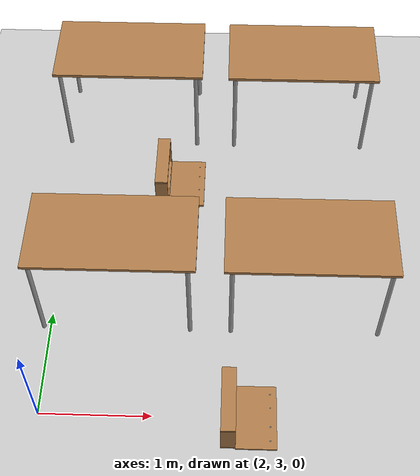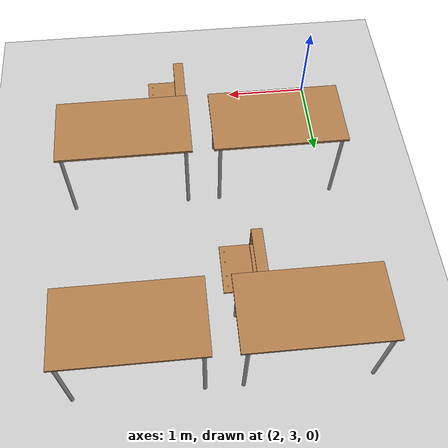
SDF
<sdf version="1.6">
 <world name="default">
  <model name="ground_plane">
   <static>1</static>
   <link name="link">
    <collision name="collision">
     <geometry><plane><normal>0 0 1</normal><size>100 100</size></plane></geometry>
     <surface>
      <contact><collide_bitmask>65535</collide_bitmask></contact>
      <friction><ode><mu>100</mu><mu2>50</mu2></ode></friction>
     </surface>
    </collision>
    <visual name="visual">
     <cast_shadows>0</cast_shadows>
     <geometry><plane><normal>0 0 1</normal><size>100 100</size></plane></geometry>
     <material>
      <script><uri>file://media/materials/scripts/gazebo.material</uri><name>Gazebo/Grey</name></script>
     </material>
    </visual>
   </link>
  </model>
  <model name="table_7">
   <static>1</static>
   <link name="link">
    <collision name="surface">
     <pose>0 0 1 0 -0 0</pose>
     <geometry><box><size>1.5 0.8 0.03</size></box></geometry>
     <surface><friction><ode><mu>0.6</mu><mu2>0.6</mu2></ode></friction></surface>
    </collision>
    <visual name="visual1">
     <pose>0 0 1 0 -0 0</pose>
     <geometry><box><size>1.5 0.8 0.03</size></box></geometry>
     <material>
      <script><uri>file://media/materials/scripts/gazebo.material</uri><name>Gazebo/Wood</name></script>
     </material>
    </visual>
    <collision name="front_left_leg">
     <pose>0.68 0.38 0.5 0 -0 0</pose>
     <geometry><cylinder><radius>0.02</radius><length>1</length></cylinder></geometry>
    </collision>
    <visual name="front_left_leg">
     <pose>0.68 0.38 0.5 0 -0 0</pose>
     <geometry><cylinder><radius>0.02</radius><length>1</length></cylinder></geometry>
     <material>
      <script><uri>file://media/materials/scripts/gazebo.material</uri><name>Gazebo/Grey</name></script>
     </material>
    </visual>
    <collision name="front_right_leg">
     <pose>0.68 -0.38 0.5 0 -0 0</pose>
     <geometry><cylinder><radius>0.02</radius><length>1</length></cylinder></geometry>
    </collision>
    <visual name="front_right_leg">
     <pose>0.68 -0.38 0.5 0 -0 0</pose>
     <geometry><cylinder><radius>0.02</radius><length>1</length></cylinder></geometry>
     <material>
      <script><uri>file://media/materials/scripts/gazebo.material</uri><name>Gazebo/Grey</name></script>
     </material>
    </visual>
    <collision name="back_right_leg">
     <pose>-0.68 -0.38 0.5 0 -0 0</pose>
     <geometry><cylinder><radius>0.02</radius><length>1</length></cylinder></geometry>
    </collision>
    <visual name="back_right_leg">
     <pose>-0.68 -0.38 0.5 0 -0 0</pose>
     <geometry><cylinder><radius>0.02</radius><length>1</length></cylinder></geometry>
     <material>
      <script><uri>file://media/materials/scripts/gazebo.material</uri><name>Gazebo/Grey</name></script>
     </material>
    </visual>
    <collision name="back_left_leg">
     <pose>-0.68 0.38 0.5 0 -0 0</pose>
     <geometry><cylinder><radius>0.02</radius><length>1</length></cylinder></geometry>
    </collision>
    <visual name="back_left_leg">
     <pose>-0.68 0.38 0.5 0 -0 0</pose>
     <geometry><cylinder><radius>0.02</radius><length>1</length></cylinder></geometry>
     <material>
      <script><uri>file://media/materials/scripts/gazebo.material</uri><name>Gazebo/Grey</name></script>
     </material>
    </visual>
   </link>
   <pose>4.34773 6.5506 0 0 -0 0</pose>
  </model>
  <model name="table_8">
   <static>1</static>
   <link name="link">
    <collision name="surface">
     <pose>0 0 1 0 -0 0</pose>
     <geometry><box><size>1.5 0.8 0.03</size></box></geometry>
     <surface><friction><ode><mu>0.6</mu><mu2>0.6</mu2></ode></friction></surface>
    </collision>
    <visual name="visual1">
     <pose>0 0 1 0 -0 0</pose>
     <geometry><box><size>1.5 0.8 0.03</size></box></geometry>
     <material>
      <script><uri>file://media/materials/scripts/gazebo.material</uri><name>Gazebo/Wood</name></script>
     </material>
    </visual>
    <collision name="front_left_leg">
     <pose>0.68 0.38 0.5 0 -0 0</pose>
     <geometry><cylinder><radius>0.02</radius><length>1</length></cylinder></geometry>
    </collision>
    <visual name="front_left_leg">
     <pose>0.68 0.38 0.5 0 -0 0</pose>
     <geometry><cylinder><radius>0.02</radius><length>1</length></cylinder></geometry>
     <material>
      <script><uri>file://media/materials/scripts/gazebo.material</uri><name>Gazebo/Grey</name></script>
     </material>
    </visual>
    <collision name="front_right_leg">
     <pose>0.68 -0.38 0.5 0 -0 0</pose>
     <geometry><cylinder><radius>0.02</radius><length>1</length></cylinder></geometry>
    </collision>
    <visual name="front_right_leg">
     <pose>0.68 -0.38 0.5 0 -0 0</pose>
     <geometry><cylinder><radius>0.02</radius><length>1</length></cylinder></geometry>
     <material>
      <script><uri>file://media/materials/scripts/gazebo.material</uri><name>Gazebo/Grey</name></script>
     </material>
    </visual>
    <collision name="back_right_leg">
     <pose>-0.68 -0.38 0.5 0 -0 0</pose>
     <geometry><cylinder><radius>0.02</radius><length>1</length></cylinder></geometry>
    </collision>
    <visual name="back_right_leg">
     <pose>-0.68 -0.38 0.5 0 -0 0</pose>
     <geometry><cylinder><radius>0.02</radius><length>1</length></cylinder></geometry>
     <material>
      <script><uri>file://media/materials/scripts/gazebo.material</uri><name>Gazebo/Grey</name></script>
     </material>
    </visual>
    <collision name="back_left_leg">
     <pose>-0.68 0.38 0.5 0 -0 0</pose>
     <geometry><cylinder><radius>0.02</radius><length>1</length></cylinder></geometry>
    </collision>
    <visual name="back_left_leg">
     <pose>-0.68 0.38 0.5 0 -0 0</pose>
     <geometry><cylinder><radius>0.02</radius><length>1</length></cylinder></geometry>
     <material>
      <script><uri>file://media/materials/scripts/gazebo.material</uri><name>Gazebo/Grey</name></script>
     </material>
    </visual>
   </link>
   <pose>4.35157 4.25195 0 0 -0 0</pose>
  </model>
  <model name="table_9">
   <static>1</static>
   <link name="link">
    <collision name="surface">
     <pose>0 0 1 0 -0 0</pose>
     <geometry><box><size>1.5 0.8 0.03</size></box></geometry>
     <surface><friction><ode><mu>0.6</mu><mu2>0.6</mu2></ode></friction></surface>
    </collision>
    <visual name="visual1">
     <pose>0 0 1 0 -0 0</pose>
     <geometry><box><size>1.5 0.8 0.03</size></box></geometry>
     <material>
      <script><uri>file://media/materials/scripts/gazebo.material</uri><name>Gazebo/Wood</name></script>
     </material>
    </visual>
    <collision name="front_left_leg">
     <pose>0.68 0.38 0.5 0 -0 0</pose>
     <geometry><cylinder><radius>0.02</radius><length>1</length></cylinder></geometry>
    </collision>
    <visual name="front_left_leg">
     <pose>0.68 0.38 0.5 0 -0 0</pose>
     <geometry><cylinder><radius>0.02</radius><length>1</length></cylinder></geometry>
     <material>
      <script><uri>file://media/materials/scripts/gazebo.material</uri><name>Gazebo/Grey</name></script>
     </material>
    </visual>
    <collision name="front_right_leg">
     <pose>0.68 -0.38 0.5 0 -0 0</pose>
     <geometry><cylinder><radius>0.02</radius><length>1</length></cylinder></geometry>
    </collision>
    <visual name="front_right_leg">
     <pose>0.68 -0.38 0.5 0 -0 0</pose>
     <geometry><cylinder><radius>0.02</radius><length>1</length></cylinder></geometry>
     <material>
      <script><uri>file://media/materials/scripts/gazebo.material</uri><name>Gazebo/Grey</name></script>
     </material>
    </visual>
    <collision name="back_right_leg">
     <pose>-0.68 -0.38 0.5 0 -0 0</pose>
     <geometry><cylinder><radius>0.02</radius><length>1</length></cylinder></geometry>
    </collision>
    <visual name="back_right_leg">
     <pose>-0.68 -0.38 0.5 0 -0 0</pose>
     <geometry><cylinder><radius>0.02</radius><length>1</length></cylinder></geometry>
     <material>
      <script><uri>file://media/materials/scripts/gazebo.material</uri><name>Gazebo/Grey</name></script>
     </material>
    </visual>
    <collision name="back_left_leg">
     <pose>-0.68 0.38 0.5 0 -0 0</pose>
     <geometry><cylinder><radius>0.02</radius><length>1</length></cylinder></geometry>
    </collision>
    <visual name="back_left_leg">
     <pose>-0.68 0.38 0.5 0 -0 0</pose>
     <geometry><cylinder><radius>0.02</radius><length>1</length></cylinder></geometry>
     <material>
      <script><uri>file://media/materials/scripts/gazebo.material</uri><name>Gazebo/Grey</name></script>
     </material>
    </visual>
   </link>
   <pose>2.5895 6.55508 0 0 -0 0</pose>
  </model>
  <model name="table_10">
   <static>1</static>
   <link name="link">
    <collision name="surface">
     <pose>0 0 1 0 -0 0</pose>
     <geometry><box><size>1.5 0.8 0.03</size></box></geometry>
     <surface><friction><ode><mu>0.6</mu><mu2>0.6</mu2></ode></friction></surface>
    </collision>
    <visual name="visual1">
     <pose>0 0 1 0 -0 0</pose>
     <geometry><box><size>1.5 0.8 0.03</size></box></geometry>
     <material>
      <script><uri>file://media/materials/scripts/gazebo.material</uri><name>Gazebo/Wood</name></script>
     </material>
    </visual>
    <collision name="front_left_leg">
     <pose>0.68 0.38 0.5 0 -0 0</pose>
     <geometry><cylinder><radius>0.02</radius><length>1</length></cylinder></geometry>
    </collision>
    <visual name="front_left_leg">
     <pose>0.68 0.38 0.5 0 -0 0</pose>
     <geometry><cylinder><radius>0.02</radius><length>1</length></cylinder></geometry>
     <material>
      <script><uri>file://media/materials/scripts/gazebo.material</uri><name>Gazebo/Grey</name></script>
     </material>
    </visual>
    <collision name="front_right_leg">
     <pose>0.68 -0.38 0.5 0 -0 0</pose>
     <geometry><cylinder><radius>0.02</radius><length>1</length></cylinder></geometry>
    </collision>
    <visual name="front_right_leg">
     <pose>0.68 -0.38 0.5 0 -0 0</pose>
     <geometry><cylinder><radius>0.02</radius><length>1</length></cylinder></geometry>
     <material>
      <script><uri>file://media/materials/scripts/gazebo.material</uri><name>Gazebo/Grey</name></script>
     </material>
    </visual>
    <collision name="back_right_leg">
     <pose>-0.68 -0.38 0.5 0 -0 0</pose>
     <geometry><cylinder><radius>0.02</radius><length>1</length></cylinder></geometry>
    </collision>
    <visual name="back_right_leg">
     <pose>-0.68 -0.38 0.5 0 -0 0</pose>
     <geometry><cylinder><radius>0.02</radius><length>1</length></cylinder></geometry>
     <material>
      <script><uri>file://media/materials/scripts/gazebo.material</uri><name>Gazebo/Grey</name></script>
     </material>
    </visual>
    <collision name="back_left_leg">
     <pose>-0.68 0.38 0.5 0 -0 0</pose>
     <geometry><cylinder><radius>0.02</radius><length>1</length></cylinder></geometry>
    </collision>
    <visual name="back_left_leg">
     <pose>-0.68 0.38 0.5 0 -0 0</pose>
     <geometry><cylinder><radius>0.02</radius><length>1</length></cylinder></geometry>
     <material>
      <script><uri>file://media/materials/scripts/gazebo.material</uri><name>Gazebo/Grey</name></script>
     </material>
    </visual>
   </link>
   <pose>2.61379 4.25407 0 0 -0 0</pose>
  </model>
  <model name="wooden_case">
   <link name="base">
    <pose>0 0 0.024 0 -0 0</pose>
    <inertial>
     <pose>-0.022184 0 0.171592 0 -0 0</pose>
     <mass>3.96264</mass>
     <inertia>
      <ixx>0.213536</ixx>
      <ixy>0</ixy>
      <ixz>0.000779377</ixz>
      <iyy>0.0708943</iyy>
      <iyz>0</iyz>
      <izz>0.154604</izz>
     </inertia>
    </inertial>
    <collision name="collision_back">
     <pose>-0.053975 0 0.1778 0 -0 0</pose>
     <geometry><box><size>0.01905 0.5461 0.3175</size></box></geometry>
     <surface>
      <contact>
       <poissons_ratio>0.347</poissons_ratio>
       <elastic_modulus>8.8e+09</elastic_modulus>
       <ode><kp>100000</kp><kd>100</kd><max_vel>100</max_vel><min_depth>0.001</min_depth></ode>
      </contact>
      <friction>
       <torsional>
        <coefficient>1</coefficient>
        <use_patch_radius>0</use_patch_radius>
        <surface_radius>0.01</surface_radius>
       </torsional>
      </friction>
     </surface>
    </collision>
    <visual name="visual_back">
     <pose>-0.053975 0 0.1778 0 -0 0</pose>
     <geometry><box><size>0.01905 0.5461 0.3175</size></box></geometry>
     <material>
      <script><uri>file://media/materials/scripts/gazebo.material</uri><name>Gazebo/Wood</name></script>
     </material>
    </visual>
    <collision name="collision_bottom">
     <pose>0 0 0.009525 0 -0 0</pose>
     <geometry><box><size>0.127 0.5842 0.01905</size></box></geometry>
     <surface>
      <contact>
       <poissons_ratio>0.347</poissons_ratio>
       <elastic_modulus>8.8e+09</elastic_modulus>
       <ode><kp>100000</kp><kd>100</kd><max_vel>100</max_vel><min_depth>0.001</min_depth></ode>
      </contact>
      <friction>
       <torsional>
        <coefficient>1</coefficient>
        <use_patch_radius>0</use_patch_radius>
        <surface_radius>0.01</surface_radius>
       </torsional>
      </friction>
     </surface>
    </collision>
    <visual name="visual_bottom">
     <pose>0 0 0.009525 0 -0 0</pose>
     <geometry><box><size>0.127 0.5842 0.01905</size></box></geometry>
     <material>
      <script><uri>file://media/materials/scripts/gazebo.material</uri><name>Gazebo/Wood</name></script>
     </material>
    </visual>
    <collision name="collision_top">
     <pose>0 0 0.346075 0 -0 0</pose>
     <geometry><box><size>0.127 0.5842 0.01905</size></box></geometry>
     <surface>
      <contact>
       <poissons_ratio>0.347</poissons_ratio>
       <elastic_modulus>8.8e+09</elastic_modulus>
       <ode><kp>100000</kp><kd>100</kd><max_vel>100</max_vel><min_depth>0.001</min_depth></ode>
      </contact>
      <friction>
       <torsional>
        <coefficient>1</coefficient>
        <use_patch_radius>0</use_patch_radius>
        <surface_radius>0.01</surface_radius>
       </torsional>
      </friction>
     </surface>
    </collision>
    <visual name="visual_top">
     <pose>0 0 0.346075 0 -0 0</pose>
     <geometry><box><size>0.127 0.5842 0.01905</size></box></geometry>
     <material>
      <script><uri>file://media/materials/scripts/gazebo.material</uri><name>Gazebo/Wood</name></script>
     </material>
    </visual>
    <collision name="collision_left">
     <pose>0 -0.282575 0.1778 0 -0 0</pose>
     <geometry><box><size>0.127 0.01905 0.3175</size></box></geometry>
     <surface>
      <contact>
       <poissons_ratio>0.347</poissons_ratio>
       <elastic_modulus>8.8e+09</elastic_modulus>
       <ode><kp>100000</kp><kd>100</kd><max_vel>100</max_vel><min_depth>0.001</min_depth></ode>
      </contact>
      <friction>
       <torsional>
        <coefficient>1</coefficient>
        <use_patch_radius>0</use_patch_radius>
        <surface_radius>0.01</surface_radius>
       </torsional>
      </friction>
     </surface>
    </collision>
    <visual name="visual_left">
     <pose>0 -0.282575 0.1778 0 -0 0</pose>
     <geometry><box><size>0.127 0.01905 0.3175</size></box></geometry>
     <material>
      <script><uri>file://media/materials/scripts/gazebo.material</uri><name>Gazebo/Wood</name></script>
     </material>
    </visual>
    <collision name="collision_right">
     <pose>0 0.282575 0.1778 0 -0 0</pose>
     <geometry><box><size>0.127 0.01905 0.3175</size></box></geometry>
     <surface>
      <contact>
       <poissons_ratio>0.347</poissons_ratio>
       <elastic_modulus>8.8e+09</elastic_modulus>
       <ode><kp>100000</kp><kd>100</kd><max_vel>100</max_vel><min_depth>0.001</min_depth></ode>
      </contact>
      <friction>
       <torsional>
        <coefficient>1</coefficient>
        <use_patch_radius>0</use_patch_radius>
        <surface_radius>0.01</surface_radius>
       </torsional>
      </friction>
     </surface>
    </collision>
    <visual name="visual_right">
     <pose>0 0.282575 0.1778 0 -0 0</pose>
     <geometry><box><size>0.127 0.01905 0.3175</size></box></geometry>
     <material>
      <script><uri>file://media/materials/scripts/gazebo.material</uri><name>Gazebo/Wood</name></script>
     </material>
    </visual>
    <collision name="collision_block_left">
     <pose>0.0095 -0.2151 -0.012 0 -0 0</pose>
     <geometry><box><size>0.108 0.05 0.024</size></box></geometry>
     <surface>
      <contact>
       <poissons_ratio>0.347</poissons_ratio>
       <elastic_modulus>8.8e+09</elastic_modulus>
       <ode><kp>100000</kp><kd>100</kd><max_vel>100</max_vel><min_depth>0.001</min_depth></ode>
      </contact>
      <friction>
       <torsional>
        <coefficient>1</coefficient>
        <use_patch_radius>0</use_patch_radius>
        <surface_radius>0.01</surface_radius>
       </torsional>
      </friction>
     </surface>
    </collision>
    <visual name="visual_block_left">
     <pose>0.0095 -0.2151 -0.012 0 -0 0</pose>
     <geometry><box><size>0.108 0.05 0.024</size></box></geometry>
     <material>
      <script><uri>file://media/materials/scripts/gazebo.material</uri><name>Gazebo/Wood</name></script>
     </material>
    </visual>
    <collision name="collision_block_right">
     <pose>0.0095 0.2151 -0.012 0 -0 0</pose>
     <geometry><box><size>0.108 0.05 0.024</size></box></geometry>
     <surface>
      <contact>
       <poissons_ratio>0.347</poissons_ratio>
       <elastic_modulus>8.8e+09</elastic_modulus>
       <ode><kp>100000</kp><kd>100</kd><max_vel>100</max_vel><min_depth>0.001</min_depth></ode>
      </contact>
      <friction>
       <torsional>
        <coefficient>1</coefficient>
        <use_patch_radius>0</use_patch_radius>
        <surface_radius>0.01</surface_radius>
       </torsional>
      </friction>
     </surface>
    </collision>
    <visual name="visual_block_right">
     <pose>0.0095 0.2151 -0.012 0 -0 0</pose>
     <geometry><box><size>0.108 0.05 0.024</size></box></geometry>
     <material>
      <script><uri>file://media/materials/scripts/gazebo.material</uri><name>Gazebo/Wood</name></script>
     </material>
    </visual>
   </link>
   <link name="lid">
    <pose>0.243775 0 0.009525 0 -0 0</pose>
    <inertial>
     <mass>1.97874</mass>
     <inertia>
      <ixx>0.0563367</ixx>
      <ixy>0</ixy>
      <ixz>0</ixz>
      <iyy>0.020911</iyy>
      <iyz>0</iyz>
      <izz>0.0771281</izz>
     </inertia>
    </inertial>
    <collision name="collision">
     <geometry><box><size>0.3556 0.5842 0.01905</size></box></geometry>
     <surface>
      <contact>
       <poissons_ratio>0.347</poissons_ratio>
       <elastic_modulus>8.8e+09</elastic_modulus>
       <ode><kp>100000</kp><kd>100</kd><max_vel>100</max_vel><min_depth>0.001</min_depth></ode>
      </contact>
      <friction>
       <torsional>
        <coefficient>1</coefficient>
        <use_patch_radius>0</use_patch_radius>
        <surface_radius>0.01</surface_radius>
       </torsional>
      </friction>
     </surface>
    </collision>
    <visual name="visual">
     <geometry><box><size>0.3556 0.5842 0.01905</size></box></geometry>
     <material>
      <script><uri>file://media/materials/scripts/gazebo.material</uri><name>Gazebo/Wood</name></script>
     </material>
    </visual>
    <visual name="tee_nut_1">
     <pose>0.122 -0.216 0 0 -0 0</pose>
     <geometry><cylinder><radius>0.00635</radius><length>0.0192405</length></cylinder></geometry>
     <material>
      <script><uri>file://media/materials/scripts/gazebo.material</uri><name>Gazebo/Grey</name></script>
     </material>
    </visual>
    <visual name="tee_nut_2">
     <pose>0.122 -0.088 0 0 -0 0</pose>
     <geometry><cylinder><radius>0.00635</radius><length>0.0192405</length></cylinder></geometry>
     <material>
      <script><uri>file://media/materials/scripts/gazebo.material</uri><name>Gazebo/Grey</name></script>
     </material>
    </visual>
    <visual name="tee_nut_3">
     <pose>0.122 0.088 0 0 -0 0</pose>
     <geometry><cylinder><radius>0.00635</radius><length>0.0192405</length></cylinder></geometry>
     <material>
      <script><uri>file://media/materials/scripts/gazebo.material</uri><name>Gazebo/Grey</name></script>
     </material>
    </visual>
    <visual name="tee_nut_4">
     <pose>0.122 0.216 0 0 -0 0</pose>
     <geometry><cylinder><radius>0.00635</radius><length>0.0192405</length></cylinder></geometry>
     <material>
      <script><uri>file://media/materials/scripts/gazebo.material</uri><name>Gazebo/Grey</name></script>
     </material>
    </visual>
   </link>
   <joint name="lid_hinge" type="revolute">
    <pose>-0.1778 0 0.01905 0 -0 0</pose>
    <parent>base</parent>
    <child>lid</child>
    <axis>
     <xyz>0 1 0</xyz>
     <limit><upper>0.523599</upper><lower>-1.5708</lower></limit>
     <use_parent_model_frame>0</use_parent_model_frame>
     <dynamics><spring_reference>0</spring_reference><spring_stiffness>0</spring_stiffness></dynamics>
    </axis>
   </joint>
   <pose>3.66409 3.01106 -0.001057 0 -0.000429 0</pose>
  </model>
  <model name="wooden_case_clone_0">
   <link name="base">
    <pose>0 0 0.024 0 -0 0</pose>
    <inertial>
     <pose>-0.022184 0 0.171592 0 -0 0</pose>
     <mass>3.96264</mass>
     <inertia>
      <ixx>0.213536</ixx>
      <ixy>0</ixy>
      <ixz>0.000779377</ixz>
      <iyy>0.0708943</iyy>
      <iyz>0</iyz>
      <izz>0.154604</izz>
     </inertia>
    </inertial>
    <collision name="collision_back">
     <pose>-0.053975 0 0.1778 0 -0 0</pose>
     <geometry><box><size>0.01905 0.5461 0.3175</size></box></geometry>
     <surface>
      <contact>
       <poissons_ratio>0.347</poissons_ratio>
       <elastic_modulus>8.8e+09</elastic_modulus>
       <ode><kp>100000</kp><kd>100</kd><max_vel>100</max_vel><min_depth>0.001</min_depth></ode>
      </contact>
      <friction>
       <torsional>
        <coefficient>1</coefficient>
        <use_patch_radius>0</use_patch_radius>
        <surface_radius>0.01</surface_radius>
       </torsional>
      </friction>
     </surface>
    </collision>
    <visual name="visual_back">
     <pose>-0.053975 0 0.1778 0 -0 0</pose>
     <geometry><box><size>0.01905 0.5461 0.3175</size></box></geometry>
     <material>
      <script><uri>file://media/materials/scripts/gazebo.material</uri><name>Gazebo/Wood</name></script>
     </material>
    </visual>
    <collision name="collision_bottom">
     <pose>0 0 0.009525 0 -0 0</pose>
     <geometry><box><size>0.127 0.5842 0.01905</size></box></geometry>
     <surface>
      <contact>
       <poissons_ratio>0.347</poissons_ratio>
       <elastic_modulus>8.8e+09</elastic_modulus>
       <ode><kp>100000</kp><kd>100</kd><max_vel>100</max_vel><min_depth>0.001</min_depth></ode>
      </contact>
      <friction>
       <torsional>
        <coefficient>1</coefficient>
        <use_patch_radius>0</use_patch_radius>
        <surface_radius>0.01</surface_radius>
       </torsional>
      </friction>
     </surface>
    </collision>
    <visual name="visual_bottom">
     <pose>0 0 0.009525 0 -0 0</pose>
     <geometry><box><size>0.127 0.5842 0.01905</size></box></geometry>
     <material>
      <script><uri>file://media/materials/scripts/gazebo.material</uri><name>Gazebo/Wood</name></script>
     </material>
    </visual>
    <collision name="collision_top">
     <pose>0 0 0.346075 0 -0 0</pose>
     <geometry><box><size>0.127 0.5842 0.01905</size></box></geometry>
     <surface>
      <contact>
       <poissons_ratio>0.347</poissons_ratio>
       <elastic_modulus>8.8e+09</elastic_modulus>
       <ode><kp>100000</kp><kd>100</kd><max_vel>100</max_vel><min_depth>0.001</min_depth></ode>
      </contact>
      <friction>
       <torsional>
        <coefficient>1</coefficient>
        <use_patch_radius>0</use_patch_radius>
        <surface_radius>0.01</surface_radius>
       </torsional>
      </friction>
     </surface>
    </collision>
    <visual name="visual_top">
     <pose>0 0 0.346075 0 -0 0</pose>
     <geometry><box><size>0.127 0.5842 0.01905</size></box></geometry>
     <material>
      <script><uri>file://media/materials/scripts/gazebo.material</uri><name>Gazebo/Wood</name></script>
     </material>
    </visual>
    <collision name="collision_left">
     <pose>0 -0.282575 0.1778 0 -0 0</pose>
     <geometry><box><size>0.127 0.01905 0.3175</size></box></geometry>
     <surface>
      <contact>
       <poissons_ratio>0.347</poissons_ratio>
       <elastic_modulus>8.8e+09</elastic_modulus>
       <ode><kp>100000</kp><kd>100</kd><max_vel>100</max_vel><min_depth>0.001</min_depth></ode>
      </contact>
      <friction>
       <torsional>
        <coefficient>1</coefficient>
        <use_patch_radius>0</use_patch_radius>
        <surface_radius>0.01</surface_radius>
       </torsional>
      </friction>
     </surface>
    </collision>
    <visual name="visual_left">
     <pose>0 -0.282575 0.1778 0 -0 0</pose>
     <geometry><box><size>0.127 0.01905 0.3175</size></box></geometry>
     <material>
      <script><uri>file://media/materials/scripts/gazebo.material</uri><name>Gazebo/Wood</name></script>
     </material>
    </visual>
    <collision name="collision_right">
     <pose>0 0.282575 0.1778 0 -0 0</pose>
     <geometry><box><size>0.127 0.01905 0.3175</size></box></geometry>
     <surface>
      <contact>
       <poissons_ratio>0.347</poissons_ratio>
       <elastic_modulus>8.8e+09</elastic_modulus>
       <ode><kp>100000</kp><kd>100</kd><max_vel>100</max_vel><min_depth>0.001</min_depth></ode>
      </contact>
      <friction>
       <torsional>
        <coefficient>1</coefficient>
        <use_patch_radius>0</use_patch_radius>
        <surface_radius>0.01</surface_radius>
       </torsional>
      </friction>
     </surface>
    </collision>
    <visual name="visual_right">
     <pose>0 0.282575 0.1778 0 -0 0</pose>
     <geometry><box><size>0.127 0.01905 0.3175</size></box></geometry>
     <material>
      <script><uri>file://media/materials/scripts/gazebo.material</uri><name>Gazebo/Wood</name></script>
     </material>
    </visual>
    <collision name="collision_block_left">
     <pose>0.0095 -0.2151 -0.012 0 -0 0</pose>
     <geometry><box><size>0.108 0.05 0.024</size></box></geometry>
     <surface>
      <contact>
       <poissons_ratio>0.347</poissons_ratio>
       <elastic_modulus>8.8e+09</elastic_modulus>
       <ode><kp>100000</kp><kd>100</kd><max_vel>100</max_vel><min_depth>0.001</min_depth></ode>
      </contact>
      <friction>
       <torsional>
        <coefficient>1</coefficient>
        <use_patch_radius>0</use_patch_radius>
        <surface_radius>0.01</surface_radius>
       </torsional>
      </friction>
     </surface>
    </collision>
    <visual name="visual_block_left">
     <pose>0.0095 -0.2151 -0.012 0 -0 0</pose>
     <geometry><box><size>0.108 0.05 0.024</size></box></geometry>
     <material>
      <script><uri>file://media/materials/scripts/gazebo.material</uri><name>Gazebo/Wood</name></script>
     </material>
    </visual>
    <collision name="collision_block_right">
     <pose>0.0095 0.2151 -0.012 0 -0 0</pose>
     <geometry><box><size>0.108 0.05 0.024</size></box></geometry>
     <surface>
      <contact>
       <poissons_ratio>0.347</poissons_ratio>
       <elastic_modulus>8.8e+09</elastic_modulus>
       <ode><kp>100000</kp><kd>100</kd><max_vel>100</max_vel><min_depth>0.001</min_depth></ode>
      </contact>
      <friction>
       <torsional>
        <coefficient>1</coefficient>
        <use_patch_radius>0</use_patch_radius>
        <surface_radius>0.01</surface_radius>
       </torsional>
      </friction>
     </surface>
    </collision>
    <visual name="visual_block_right">
     <pose>0.0095 0.2151 -0.012 0 -0 0</pose>
     <geometry><box><size>0.108 0.05 0.024</size></box></geometry>
     <material>
      <script><uri>file://media/materials/scripts/gazebo.material</uri><name>Gazebo/Wood</name></script>
     </material>
    </visual>
   </link>
   <link name="lid">
    <pose>0.243775 0 0.009525 0 -0 0</pose>
    <inertial>
     <mass>1.97874</mass>
     <inertia>
      <ixx>0.0563367</ixx>
      <ixy>0</ixy>
      <ixz>0</ixz>
      <iyy>0.020911</iyy>
      <iyz>0</iyz>
      <izz>0.0771281</izz>
     </inertia>
    </inertial>
    <collision name="collision">
     <geometry><box><size>0.3556 0.5842 0.01905</size></box></geometry>
     <surface>
      <contact>
       <poissons_ratio>0.347</poissons_ratio>
       <elastic_modulus>8.8e+09</elastic_modulus>
       <ode><kp>100000</kp><kd>100</kd><max_vel>100</max_vel><min_depth>0.001</min_depth></ode>
      </contact>
      <friction>
       <torsional>
        <coefficient>1</coefficient>
        <use_patch_radius>0</use_patch_radius>
        <surface_radius>0.01</surface_radius>
       </torsional>
      </friction>
     </surface>
    </collision>
    <visual name="visual">
     <geometry><box><size>0.3556 0.5842 0.01905</size></box></geometry>
     <material>
      <script><uri>file://media/materials/scripts/gazebo.material</uri><name>Gazebo/Wood</name></script>
     </material>
    </visual>
    <visual name="tee_nut_1">
     <pose>0.122 -0.216 0 0 -0 0</pose>
     <geometry><cylinder><radius>0.00635</radius><length>0.0192405</length></cylinder></geometry>
     <material>
      <script><uri>file://media/materials/scripts/gazebo.material</uri><name>Gazebo/Grey</name></script>
     </material>
    </visual>
    <visual name="tee_nut_2">
     <pose>0.122 -0.088 0 0 -0 0</pose>
     <geometry><cylinder><radius>0.00635</radius><length>0.0192405</length></cylinder></geometry>
     <material>
      <script><uri>file://media/materials/scripts/gazebo.material</uri><name>Gazebo/Grey</name></script>
     </material>
    </visual>
    <visual name="tee_nut_3">
     <pose>0.122 0.088 0 0 -0 0</pose>
     <geometry><cylinder><radius>0.00635</radius><length>0.0192405</length></cylinder></geometry>
     <material>
      <script><uri>file://media/materials/scripts/gazebo.material</uri><name>Gazebo/Grey</name></script>
     </material>
    </visual>
    <visual name="tee_nut_4">
     <pose>0.122 0.216 0 0 -0 0</pose>
     <geometry><cylinder><radius>0.00635</radius><length>0.0192405</length></cylinder></geometry>
     <material>
      <script><uri>file://media/materials/scripts/gazebo.material</uri><name>Gazebo/Grey</name></script>
     </material>
    </visual>
   </link>
   <joint name="lid_hinge" type="revolute">
    <pose>-0.1778 0 0.01905 0 -0 0</pose>
    <parent>base</parent>
    <child>lid</child>
    <axis>
     <xyz>0 1 0</xyz>
     <limit><upper>0.523599</upper><lower>-1.5708</lower></limit>
     <use_parent_model_frame>0</use_parent_model_frame>
     <dynamics><spring_reference>0</spring_reference><spring_stiffness>0</spring_stiffness></dynamics>
    </axis>
   </joint>
   <pose>2.94829 5.61456 -0.001057 0 -0.000429 0</pose>
  </model>
 </world>
</sdf>
